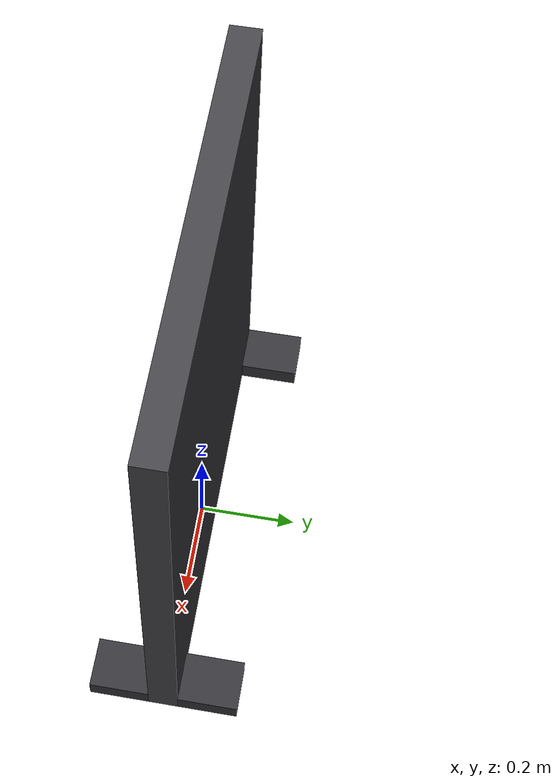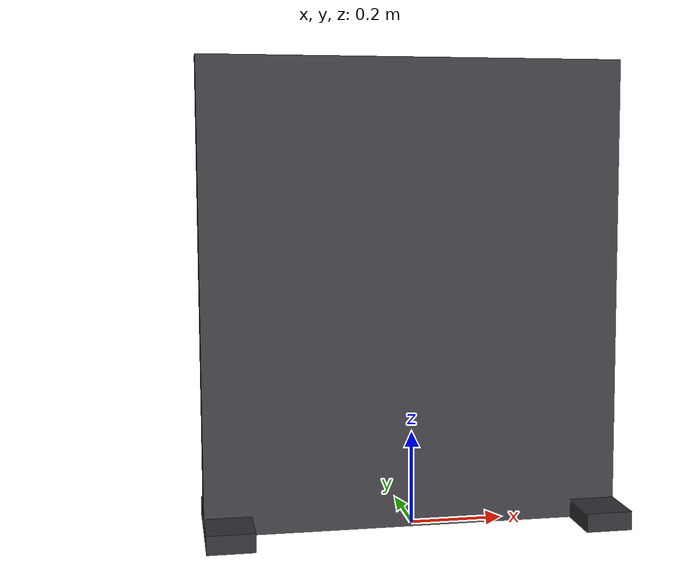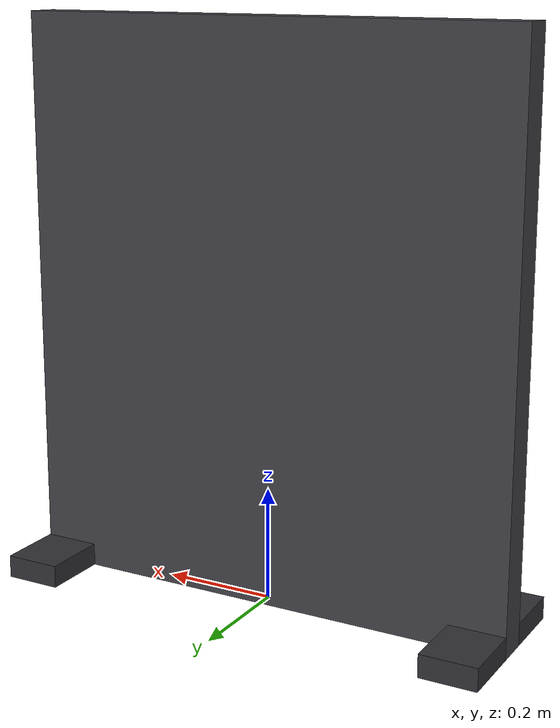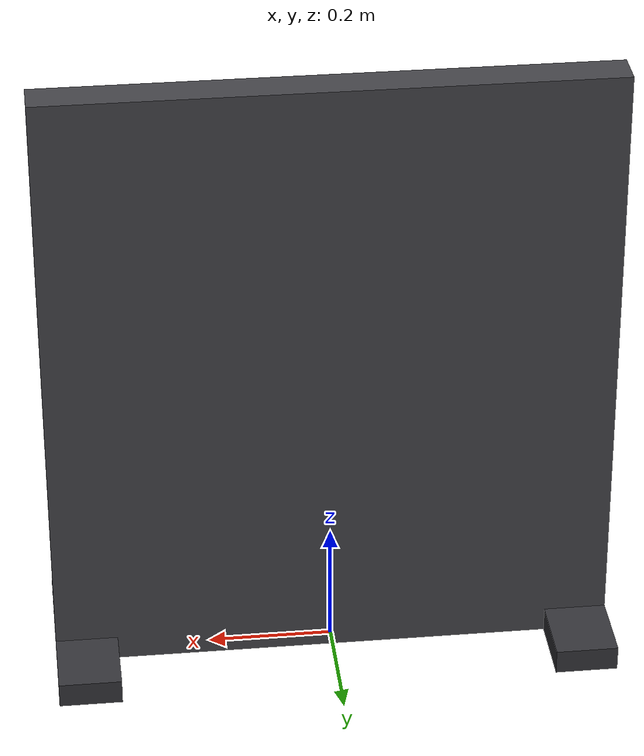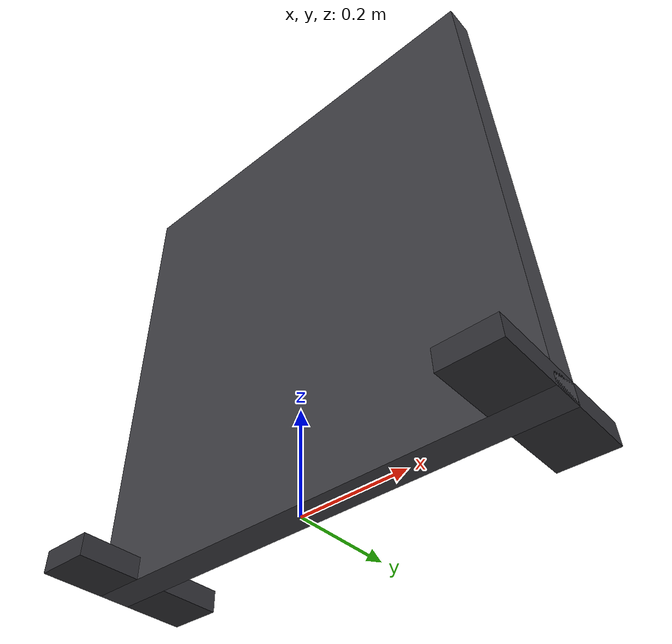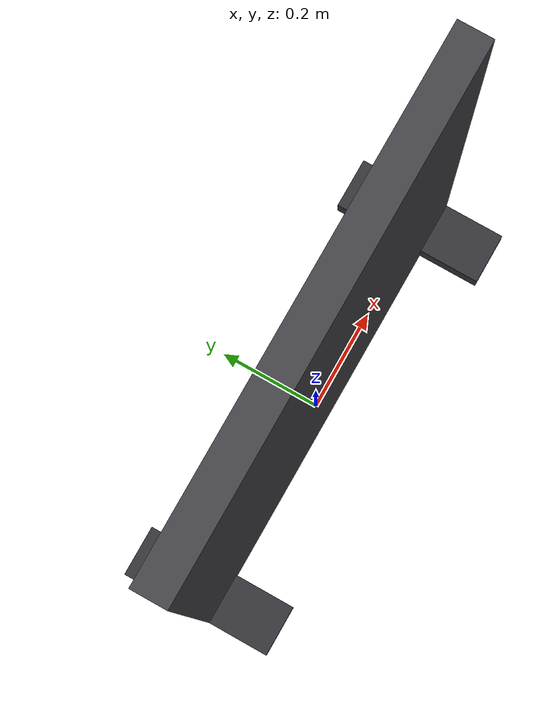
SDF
<?xml version="1.0"?>
<sdf version="1.7">
  <model name="occluder_screen">
    <static>true</static>
    <link name="link">

      <!-- Screen board: floor .. 1.00 m, centre z 0.50. -->
      <visual name="board_visual">
        <pose>0 0 0.50 0 0 0</pose>
        <geometry><box><size>0.90 0.06 1.00</size></box></geometry>
        <material>
          <ambient>0.18 0.18 0.20 1</ambient>
          <diffuse>0.26 0.26 0.28 1</diffuse>
          <specular>0.05 0.05 0.05 1</specular>
        </material>
      </visual>
      <collision name="board_collision">
        <pose>0 0 0.50 0 0 0</pose>
        <geometry><box><size>0.90 0.06 1.00</size></box></geometry>
      </collision>

      <!-- Left foot. -->
      <visual name="foot_left_visual">
        <pose>-0.40 0 0.02 0 0 0</pose>
        <geometry><box><size>0.10 0.30 0.04</size></box></geometry>
        <material>
          <ambient>0.14 0.14 0.16 1</ambient>
          <diffuse>0.20 0.20 0.22 1</diffuse>
          <specular>0.05 0.05 0.05 1</specular>
        </material>
      </visual>
      <collision name="foot_left_collision">
        <pose>-0.40 0 0.02 0 0 0</pose>
        <geometry><box><size>0.10 0.30 0.04</size></box></geometry>
      </collision>

      <!-- Right foot. -->
      <visual name="foot_right_visual">
        <pose>0.40 0 0.02 0 0 0</pose>
        <geometry><box><size>0.10 0.30 0.04</size></box></geometry>
        <material>
          <ambient>0.14 0.14 0.16 1</ambient>
          <diffuse>0.20 0.20 0.22 1</diffuse>
          <specular>0.05 0.05 0.05 1</specular>
        </material>
      </visual>
      <collision name="foot_right_collision">
        <pose>0.40 0 0.02 0 0 0</pose>
        <geometry><box><size>0.10 0.30 0.04</size></box></geometry>
      </collision>

    </link>
  </model>
</sdf>
